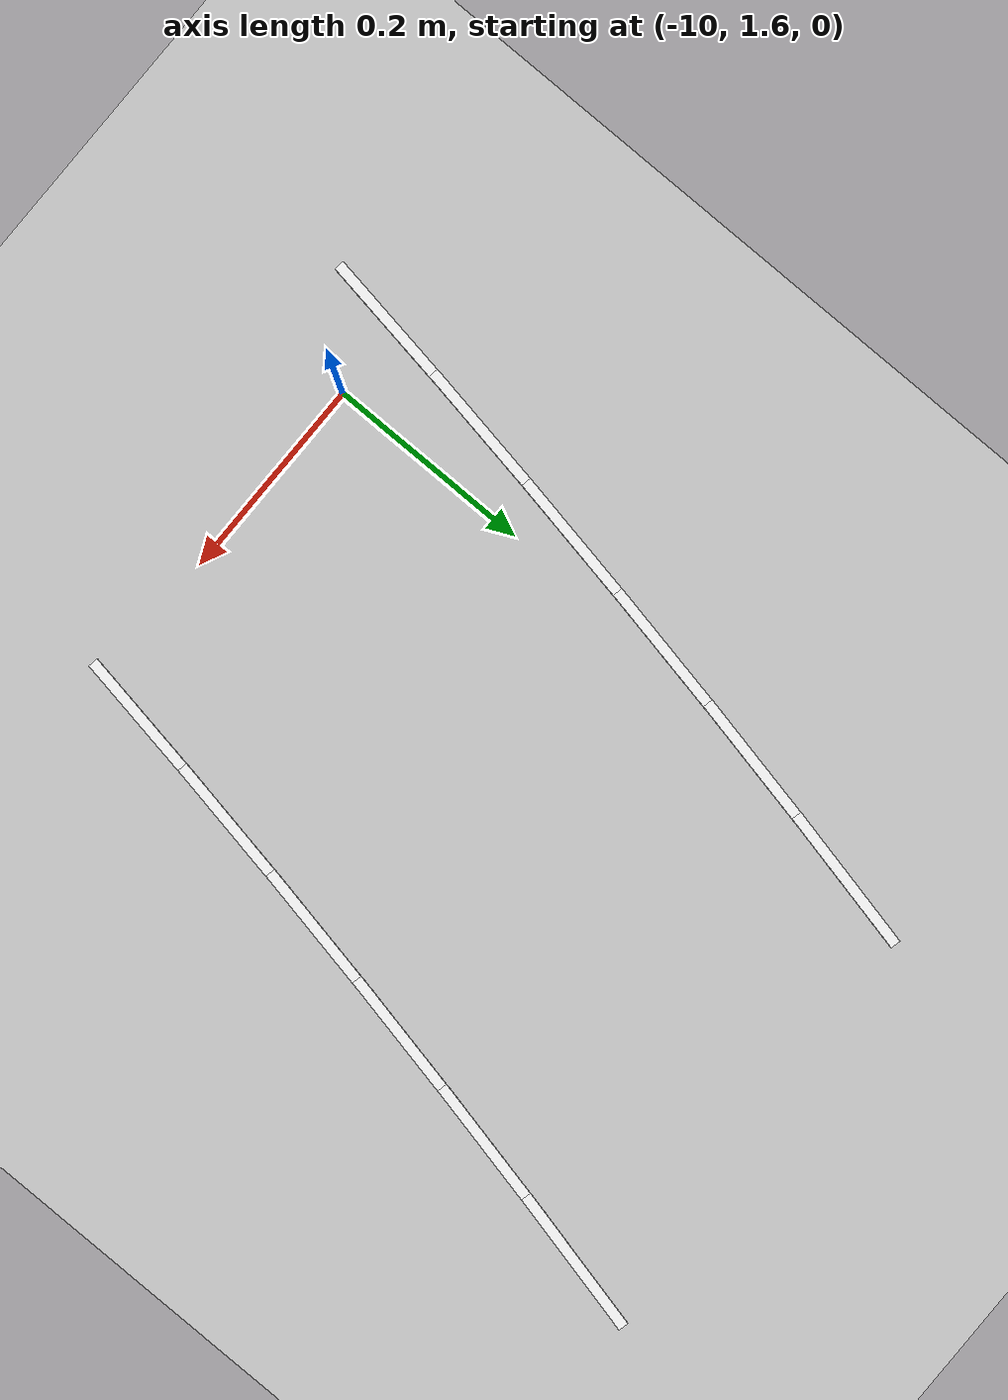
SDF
<sdf version="1.7">
 <world name="default">
  <model name="ground_plane">
   <static>1</static>
   <link name="link">
    <collision name="collision">
     <geometry><plane><normal>0 0 1</normal><size>100 100</size></plane></geometry>
     <surface>
      <contact><collide_bitmask>65535</collide_bitmask></contact>
      <friction><ode><mu>100</mu><mu2>50</mu2></ode></friction>
     </surface>
    </collision>
    <visual name="visual">
     <cast_shadows>0</cast_shadows>
     <geometry><plane><normal>0 0 1</normal><size>100 100</size></plane></geometry>
     <material>
      <script><uri>file://media/materials/scripts/gazebo.material</uri><name>Gazebo/Grey</name></script>
     </material>
    </visual>
   </link>
  </model>
  <model name="lane_line_left_231">
   <static>1</static>
   <link name="link">
    <pose>0 0 -0.004 0 -0 0</pose>
    <visual name="visual">
     <geometry><box><size>0.1457 0.01 0.01</size></box></geometry>
     <material><ambient>1 1 1 1</ambient><diffuse>1 1 1 1</diffuse></material>
    </visual>
    <collision name="collision"><geometry><box><size>0.1457 0.01 0.01</size></box></geometry></collision>
   </link>
   <pose>-9.53617 2.25777 0 0 0 -1.80327</pose>
  </model>
  <model name="lane_line_left_232">
   <static>1</static>
   <link name="link">
    <pose>0 0 -0.004 0 -0 0</pose>
    <visual name="visual">
     <geometry><box><size>0.1457 0.01 0.01</size></box></geometry>
     <material><ambient>1 1 1 1</ambient><diffuse>1 1 1 1</diffuse></material>
    </visual>
    <collision name="collision"><geometry><box><size>0.1457 0.01 0.01</size></box></geometry></collision>
   </link>
   <pose>-9.56379 2.13776 0 0 0 -1.79071</pose>
  </model>
  <model name="lane_line_right_232">
   <static>1</static>
   <link name="link">
    <pose>0 0 -0.004 0 -0 0</pose>
    <visual name="visual">
     <geometry><box><size>0.1457 0.01 0.01</size></box></geometry>
     <material><ambient>1 1 1 1</ambient><diffuse>1 1 1 1</diffuse></material>
    </visual>
    <collision name="collision"><geometry><box><size>0.1457 0.01 0.01</size></box></geometry></collision>
   </link>
   <pose>-9.95416 2.22502 0 0 0 -1.79071</pose>
  </model>
  <model name="lane_line_left_233">
   <static>1</static>
   <link name="link">
    <pose>0 0 -0.004 0 -0 0</pose>
    <visual name="visual">
     <geometry><box><size>0.1457 0.01 0.01</size></box></geometry>
     <material><ambient>1 1 1 1</ambient><diffuse>1 1 1 1</diffuse></material>
    </visual>
    <collision name="collision"><geometry><box><size>0.1457 0.01 0.01</size></box></geometry></collision>
   </link>
   <pose>-9.5899 2.01741 0 0 0 -1.77814</pose>
  </model>
  <model name="lane_line_right_233">
   <static>1</static>
   <link name="link">
    <pose>0 0 -0.004 0 -0 0</pose>
    <visual name="visual">
     <geometry><box><size>0.1457 0.01 0.01</size></box></geometry>
     <material><ambient>1 1 1 1</ambient><diffuse>1 1 1 1</diffuse></material>
    </visual>
    <collision name="collision"><geometry><box><size>0.1457 0.01 0.01</size></box></geometry></collision>
   </link>
   <pose>-9.98133 2.09976 0 0 0 -1.77814</pose>
  </model>
  <model name="lane_line_left_234">
   <static>1</static>
   <link name="link">
    <pose>0 0 -0.004 0 -0 0</pose>
    <visual name="visual">
     <geometry><box><size>0.1457 0.01 0.01</size></box></geometry>
     <material><ambient>1 1 1 1</ambient><diffuse>1 1 1 1</diffuse></material>
    </visual>
    <collision name="collision"><geometry><box><size>0.1457 0.01 0.01</size></box></geometry></collision>
   </link>
   <pose>-9.61449 1.89675 0 0 0 -1.76558</pose>
  </model>
  <model name="lane_line_right_234">
   <static>1</static>
   <link name="link">
    <pose>0 0 -0.004 0 -0 0</pose>
    <visual name="visual">
     <geometry><box><size>0.1457 0.01 0.01</size></box></geometry>
     <material><ambient>1 1 1 1</ambient><diffuse>1 1 1 1</diffuse></material>
    </visual>
    <collision name="collision"><geometry><box><size>0.1457 0.01 0.01</size></box></geometry></collision>
   </link>
   <pose>-10.0069 1.97417 0 0 0 -1.76558</pose>
  </model>
  <model name="lane_line_left_235">
   <static>1</static>
   <link name="link">
    <pose>0 0 -0.004 0 -0 0</pose>
    <visual name="visual">
     <geometry><box><size>0.1457 0.01 0.01</size></box></geometry>
     <material><ambient>1 1 1 1</ambient><diffuse>1 1 1 1</diffuse></material>
    </visual>
    <collision name="collision"><geometry><box><size>0.1457 0.01 0.01</size></box></geometry></collision>
   </link>
   <pose>-9.63757 1.77578 0 0 0 -1.75301</pose>
  </model>
  <model name="lane_line_right_235">
   <static>1</static>
   <link name="link">
    <pose>0 0 -0.004 0 -0 0</pose>
    <visual name="visual">
     <geometry><box><size>0.1457 0.01 0.01</size></box></geometry>
     <material><ambient>1 1 1 1</ambient><diffuse>1 1 1 1</diffuse></material>
    </visual>
    <collision name="collision"><geometry><box><size>0.1457 0.01 0.01</size></box></geometry></collision>
   </link>
   <pose>-10.0309 1.84826 0 0 0 -1.75301</pose>
  </model>
  <model name="lane_line_left_236">
   <static>1</static>
   <link name="link">
    <pose>0 0 -0.004 0 -0 0</pose>
    <visual name="visual">
     <geometry><box><size>0.1457 0.01 0.01</size></box></geometry>
     <material><ambient>1 1 1 1</ambient><diffuse>1 1 1 1</diffuse></material>
    </visual>
    <collision name="collision"><geometry><box><size>0.1457 0.01 0.01</size></box></geometry></collision>
   </link>
   <pose>-9.65912 1.65453 0 0 0 -1.74044</pose>
  </model>
  <model name="lane_line_right_236">
   <static>1</static>
   <link name="link">
    <pose>0 0 -0.004 0 -0 0</pose>
    <visual name="visual">
     <geometry><box><size>0.1457 0.01 0.01</size></box></geometry>
     <material><ambient>1 1 1 1</ambient><diffuse>1 1 1 1</diffuse></material>
    </visual>
    <collision name="collision"><geometry><box><size>0.1457 0.01 0.01</size></box></geometry></collision>
   </link>
   <pose>-10.0534 1.72207 0 0 0 -1.74044</pose>
  </model>
  <model name="lane_line_right_237">
   <static>1</static>
   <link name="link">
    <pose>0 0 -0.004 0 -0 0</pose>
    <visual name="visual">
     <geometry><box><size>0.1457 0.01 0.01</size></box></geometry>
     <material><ambient>1 1 1 1</ambient><diffuse>1 1 1 1</diffuse></material>
    </visual>
    <collision name="collision"><geometry><box><size>0.1457 0.01 0.01</size></box></geometry></collision>
   </link>
   <pose>-10.0742 1.5956 0 0 0 -1.72788</pose>
  </model>
 </world>
</sdf>
